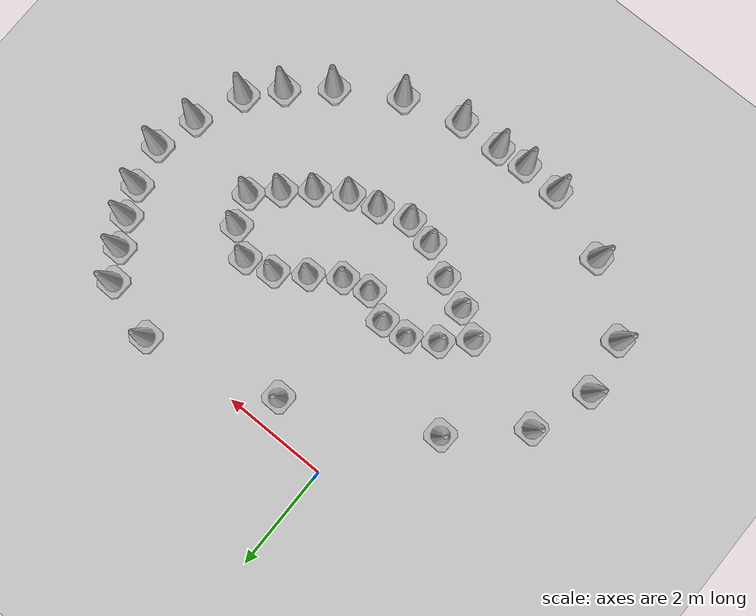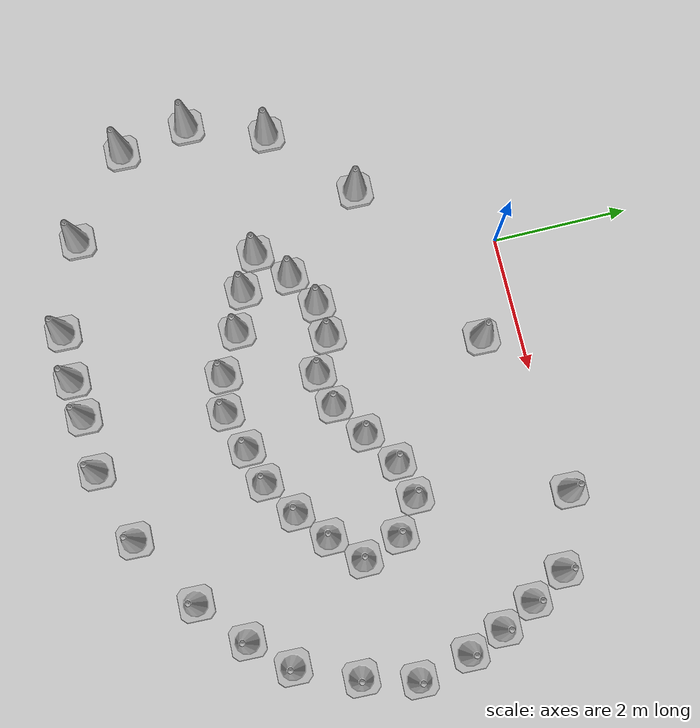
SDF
<sdf version="1.7">
 <world name="default">
  <light name="sun" type="directional">
   <pose>0 0 10 0 -0 0</pose>
   <diffuse>0.8 0.8 0.8 1</diffuse>
   <specular>0.2 0.2 0.2 1</specular>
   <attenuation>
    <range>1000</range>
    <constant>0.9</constant>
    <linear>0.01</linear>
    <quadratic>0.001</quadratic>
   </attenuation>
   <direction>-0.5 0.1 -0.9</direction>
   <spot><inner_angle>0</inner_angle><outer_angle>0</outer_angle><falloff>0</falloff></spot>
  </light>
  <model name="ground_plane">
   <static>1</static>
   <link name="link">
    <collision name="collision">
     <geometry><plane><normal>0 0 1</normal><size>100 100</size></plane></geometry>
     <surface>
      <contact><collide_bitmask>65535</collide_bitmask></contact>
      <friction><ode><mu>100</mu><mu2>50</mu2></ode></friction>
     </surface>
    </collision>
    <visual name="visual">
     <cast_shadows>0</cast_shadows>
     <geometry><plane><normal>0 0 1</normal><size>100 100</size></plane></geometry>
     <material>
      <script><uri>file://media/materials/scripts/gazebo.material</uri><name>Gazebo/Grey</name></script>
     </material>
    </visual>
   </link>
  </model>
  <gravity>0 0 -9.8</gravity>
  <magnetic_field>6e-06 2.3e-05 -4.2e-05</magnetic_field>
  <atmosphere type="adiabatic"/>
  <physics type="ode">
   <max_step_size>0.001</max_step_size>
   <real_time_factor>1</real_time_factor>
   <real_time_update_rate>1000</real_time_update_rate>
  </physics>
  <scene><ambient>0.4 0.4 0.4 1</ambient><background>0.7 0.7 0.7 1</background><shadows>1</shadows></scene>
  <spherical_coordinates>
   <surface_model>EARTH_WGS84</surface_model>
   <latitude_deg>0</latitude_deg>
   <longitude_deg>0</longitude_deg>
   <elevation>0</elevation>
   <heading_deg>0</heading_deg>
  </spherical_coordinates>
  <model name="Construction Cone">
   <link name="link">
    <collision name="collision">
     <geometry>
      <mesh><scale>10 10 10</scale><uri>model://construction_cone/meshes/construction_cone.dae</uri></mesh>
     </geometry>
    </collision>
    <visual name="visual">
     <geometry>
      <mesh><scale>10 10 10</scale><uri>model://construction_cone/meshes/construction_cone.dae</uri></mesh>
     </geometry>
    </visual>
    <inertial>
     <inertia><ixx>1</ixx><ixy>0</ixy><ixz>0</ixz><iyy>1</iyy><iyz>0</iyz><izz>1</izz></inertia>
     <mass>1</mass>
    </inertial>
   </link>
   <pose>0.821754 -2.77075 -0 0 -1e-06 0.015119</pose>
  </model>
  <model name="Construction Cone_clone">
   <link name="link">
    <collision name="collision">
     <geometry>
      <mesh><scale>10 10 10</scale><uri>model://construction_cone/meshes/construction_cone.dae</uri></mesh>
     </geometry>
    </collision>
    <visual name="visual">
     <geometry>
      <mesh><scale>10 10 10</scale><uri>model://construction_cone/meshes/construction_cone.dae</uri></mesh>
     </geometry>
    </visual>
    <inertial>
     <inertia><ixx>1</ixx><ixy>0</ixy><ixz>0</ixz><iyy>1</iyy><iyz>0</iyz><izz>1</izz></inertia>
     <mass>1</mass>
    </inertial>
   </link>
   <pose>1.84637 -2.91624 -0 0 0 -0.029286</pose>
  </model>
  <model name="Construction Cone_clone_0">
   <link name="link">
    <collision name="collision">
     <geometry>
      <mesh><scale>10 10 10</scale><uri>model://construction_cone/meshes/construction_cone.dae</uri></mesh>
     </geometry>
    </collision>
    <visual name="visual">
     <geometry>
      <mesh><scale>10 10 10</scale><uri>model://construction_cone/meshes/construction_cone.dae</uri></mesh>
     </geometry>
    </visual>
    <inertial>
     <inertia><ixx>1</ixx><ixy>0</ixy><ixz>0</ixz><iyy>1</iyy><iyz>0</iyz><izz>1</izz></inertia>
     <mass>1</mass>
    </inertial>
   </link>
   <pose>1.33214 -3.03659 -0 0 0 -0.029265</pose>
  </model>
  <model name="Construction Cone_clone_1">
   <link name="link">
    <collision name="collision">
     <geometry>
      <mesh><scale>10 10 10</scale><uri>model://construction_cone/meshes/construction_cone.dae</uri></mesh>
     </geometry>
    </collision>
    <visual name="visual">
     <geometry>
      <mesh><scale>10 10 10</scale><uri>model://construction_cone/meshes/construction_cone.dae</uri></mesh>
     </geometry>
    </visual>
    <inertial>
     <inertia><ixx>1</ixx><ixy>0</ixy><ixz>0</ixz><iyy>1</iyy><iyz>0</iyz><izz>1</izz></inertia>
     <mass>1</mass>
    </inertial>
   </link>
   <pose>2.36201 -2.57046 -0 0 -0 0</pose>
  </model>
  <model name="Construction Cone_clone_2">
   <link name="link">
    <collision name="collision">
     <geometry>
      <mesh><scale>10 10 10</scale><uri>model://construction_cone/meshes/construction_cone.dae</uri></mesh>
     </geometry>
    </collision>
    <visual name="visual">
     <geometry>
      <mesh><scale>10 10 10</scale><uri>model://construction_cone/meshes/construction_cone.dae</uri></mesh>
     </geometry>
    </visual>
    <inertial>
     <inertia><ixx>1</ixx><ixy>0</ixy><ixz>0</ixz><iyy>1</iyy><iyz>0</iyz><izz>1</izz></inertia>
     <mass>1</mass>
    </inertial>
   </link>
   <pose>2.88084 -2.21736 -0 0 -0 0</pose>
  </model>
  <model name="Construction Cone_clone_3">
   <link name="link">
    <collision name="collision">
     <geometry>
      <mesh><scale>10 10 10</scale><uri>model://construction_cone/meshes/construction_cone.dae</uri></mesh>
     </geometry>
    </collision>
    <visual name="visual">
     <geometry>
      <mesh><scale>10 10 10</scale><uri>model://construction_cone/meshes/construction_cone.dae</uri></mesh>
     </geometry>
    </visual>
    <inertial>
     <inertia><ixx>1</ixx><ixy>0</ixy><ixz>0</ixz><iyy>1</iyy><iyz>0</iyz><izz>1</izz></inertia>
     <mass>1</mass>
    </inertial>
   </link>
   <pose>3.42713 -2.08579 -5e-06 -4e-06 1e-06 -0.001164</pose>
  </model>
  <model name="Construction Cone_clone_4">
   <link name="link">
    <collision name="collision">
     <geometry>
      <mesh><scale>10 10 10</scale><uri>model://construction_cone/meshes/construction_cone.dae</uri></mesh>
     </geometry>
    </collision>
    <visual name="visual">
     <geometry>
      <mesh><scale>10 10 10</scale><uri>model://construction_cone/meshes/construction_cone.dae</uri></mesh>
     </geometry>
    </visual>
    <inertial>
     <inertia><ixx>1</ixx><ixy>0</ixy><ixz>0</ixz><iyy>1</iyy><iyz>0</iyz><izz>1</izz></inertia>
     <mass>1</mass>
    </inertial>
   </link>
   <pose>3.9204 -2.43605 -0 0 0 -0.001432</pose>
  </model>
  <model name="Construction Cone_clone_5">
   <link name="link">
    <collision name="collision">
     <geometry>
      <mesh><scale>10 10 10</scale><uri>model://construction_cone/meshes/construction_cone.dae</uri></mesh>
     </geometry>
    </collision>
    <visual name="visual">
     <geometry>
      <mesh><scale>10 10 10</scale><uri>model://construction_cone/meshes/construction_cone.dae</uri></mesh>
     </geometry>
    </visual>
    <inertial>
     <inertia><ixx>1</ixx><ixy>0</ixy><ixz>0</ixz><iyy>1</iyy><iyz>0</iyz><izz>1</izz></inertia>
     <mass>1</mass>
    </inertial>
   </link>
   <pose>4.13597 -3.02036 -0 0 -0 0.000525</pose>
  </model>
  <model name="Construction Cone_clone_6">
   <link name="link">
    <collision name="collision">
     <geometry>
      <mesh><scale>10 10 10</scale><uri>model://construction_cone/meshes/construction_cone.dae</uri></mesh>
     </geometry>
    </collision>
    <visual name="visual">
     <geometry>
      <mesh><scale>10 10 10</scale><uri>model://construction_cone/meshes/construction_cone.dae</uri></mesh>
     </geometry>
    </visual>
    <inertial>
     <inertia><ixx>1</ixx><ixy>0</ixy><ixz>0</ixz><iyy>1</iyy><iyz>0</iyz><izz>1</izz></inertia>
     <mass>1</mass>
    </inertial>
   </link>
   <pose>3.71044 -3.43818 -0 0 -0 0.001297</pose>
  </model>
  <model name="Construction Cone_clone_7">
   <link name="link">
    <collision name="collision">
     <geometry>
      <mesh><scale>10 10 10</scale><uri>model://construction_cone/meshes/construction_cone.dae</uri></mesh>
     </geometry>
    </collision>
    <visual name="visual">
     <geometry>
      <mesh><scale>10 10 10</scale><uri>model://construction_cone/meshes/construction_cone.dae</uri></mesh>
     </geometry>
    </visual>
    <inertial>
     <inertia><ixx>1</ixx><ixy>0</ixy><ixz>0</ixz><iyy>1</iyy><iyz>0</iyz><izz>1</izz></inertia>
     <mass>1</mass>
    </inertial>
   </link>
   <pose>3.25235 -3.82347 -1e-05 0 1e-06 0.000857</pose>
  </model>
  <model name="Construction Cone_clone_8">
   <link name="link">
    <collision name="collision">
     <geometry>
      <mesh><scale>10 10 10</scale><uri>model://construction_cone/meshes/construction_cone.dae</uri></mesh>
     </geometry>
    </collision>
    <visual name="visual">
     <geometry>
      <mesh><scale>10 10 10</scale><uri>model://construction_cone/meshes/construction_cone.dae</uri></mesh>
     </geometry>
    </visual>
    <inertial>
     <inertia><ixx>1</ixx><ixy>0</ixy><ixz>0</ixz><iyy>1</iyy><iyz>0</iyz><izz>1</izz></inertia>
     <mass>1</mass>
    </inertial>
   </link>
   <pose>2.72412 -4.16001 0 -0 -0 -0</pose>
  </model>
  <model name="Construction Cone_clone_9">
   <link name="link">
    <collision name="collision">
     <geometry>
      <mesh><scale>10 10 10</scale><uri>model://construction_cone/meshes/construction_cone.dae</uri></mesh>
     </geometry>
    </collision>
    <visual name="visual">
     <geometry>
      <mesh><scale>10 10 10</scale><uri>model://construction_cone/meshes/construction_cone.dae</uri></mesh>
     </geometry>
    </visual>
    <inertial>
     <inertia><ixx>1</ixx><ixy>0</ixy><ixz>0</ixz><iyy>1</iyy><iyz>0</iyz><izz>1</izz></inertia>
     <mass>1</mass>
    </inertial>
   </link>
   <pose>2.18133 -4.30389 -1e-06 2e-06 2e-06 0</pose>
  </model>
  <model name="Construction Cone_clone_10">
   <link name="link">
    <collision name="collision">
     <geometry>
      <mesh><scale>10 10 10</scale><uri>model://construction_cone/meshes/construction_cone.dae</uri></mesh>
     </geometry>
    </collision>
    <visual name="visual">
     <geometry>
      <mesh><scale>10 10 10</scale><uri>model://construction_cone/meshes/construction_cone.dae</uri></mesh>
     </geometry>
    </visual>
    <inertial>
     <inertia><ixx>1</ixx><ixy>0</ixy><ixz>0</ixz><iyy>1</iyy><iyz>0</iyz><izz>1</izz></inertia>
     <mass>1</mass>
    </inertial>
   </link>
   <pose>1.58628 -4.48463 -0 0 -1e-06 0</pose>
  </model>
  <model name="Construction Cone_clone_11">
   <link name="link">
    <collision name="collision">
     <geometry>
      <mesh><scale>10 10 10</scale><uri>model://construction_cone/meshes/construction_cone.dae</uri></mesh>
     </geometry>
    </collision>
    <visual name="visual">
     <geometry>
      <mesh><scale>10 10 10</scale><uri>model://construction_cone/meshes/construction_cone.dae</uri></mesh>
     </geometry>
    </visual>
    <inertial>
     <inertia><ixx>1</ixx><ixy>0</ixy><ixz>0</ixz><iyy>1</iyy><iyz>0</iyz><izz>1</izz></inertia>
     <mass>1</mass>
    </inertial>
   </link>
   <pose>1.04633 -4.39078 -1e-05 -1e-06 0 0</pose>
  </model>
  <model name="Construction Cone_clone_12">
   <link name="link">
    <collision name="collision">
     <geometry>
      <mesh><scale>10 10 10</scale><uri>model://construction_cone/meshes/construction_cone.dae</uri></mesh>
     </geometry>
    </collision>
    <visual name="visual">
     <geometry>
      <mesh><scale>10 10 10</scale><uri>model://construction_cone/meshes/construction_cone.dae</uri></mesh>
     </geometry>
    </visual>
    <inertial>
     <inertia><ixx>1</ixx><ixy>0</ixy><ixz>0</ixz><iyy>1</iyy><iyz>0</iyz><izz>1</izz></inertia>
     <mass>1</mass>
    </inertial>
   </link>
   <pose>0.451384 -4.05324 -0 0 -0 0.015119</pose>
  </model>
  <model name="Construction Cone_clone_13">
   <link name="link">
    <collision name="collision">
     <geometry>
      <mesh><scale>10 10 10</scale><uri>model://construction_cone/meshes/construction_cone.dae</uri></mesh>
     </geometry>
    </collision>
    <visual name="visual">
     <geometry>
      <mesh><scale>10 10 10</scale><uri>model://construction_cone/meshes/construction_cone.dae</uri></mesh>
     </geometry>
    </visual>
    <inertial>
     <inertia><ixx>1</ixx><ixy>0</ixy><ixz>0</ixz><iyy>1</iyy><iyz>0</iyz><izz>1</izz></inertia>
     <mass>1</mass>
    </inertial>
   </link>
   <pose>-0.125301 -3.82866 -8e-06 1e-06 0 0.015526</pose>
  </model>
  <model name="Construction Cone_clone_14">
   <link name="link">
    <collision name="collision">
     <geometry>
      <mesh><scale>10 10 10</scale><uri>model://construction_cone/meshes/construction_cone.dae</uri></mesh>
     </geometry>
    </collision>
    <visual name="visual">
     <geometry>
      <mesh><scale>10 10 10</scale><uri>model://construction_cone/meshes/construction_cone.dae</uri></mesh>
     </geometry>
    </visual>
    <inertial>
     <inertia><ixx>1</ixx><ixy>0</ixy><ixz>0</ixz><iyy>1</iyy><iyz>0</iyz><izz>1</izz></inertia>
     <mass>1</mass>
    </inertial>
   </link>
   <pose>0.317957 -2.81229 -0 -0 -1e-06 0.011952</pose>
  </model>
  <model name="Construction Cone_clone_15">
   <link name="link">
    <collision name="collision">
     <geometry>
      <mesh><scale>10 10 10</scale><uri>model://construction_cone/meshes/construction_cone.dae</uri></mesh>
     </geometry>
    </collision>
    <visual name="visual">
     <geometry>
      <mesh><scale>10 10 10</scale><uri>model://construction_cone/meshes/construction_cone.dae</uri></mesh>
     </geometry>
    </visual>
    <inertial>
     <inertia><ixx>1</ixx><ixy>0</ixy><ixz>0</ixz><iyy>1</iyy><iyz>0</iyz><izz>1</izz></inertia>
     <mass>1</mass>
    </inertial>
   </link>
   <pose>-0.18147 -3.10478 -0 0 -1e-06 0.013586</pose>
  </model>
  <model name="Construction Cone_clone_16">
   <link name="link">
    <collision name="collision">
     <geometry>
      <mesh><scale>10 10 10</scale><uri>model://construction_cone/meshes/construction_cone.dae</uri></mesh>
     </geometry>
    </collision>
    <visual name="visual">
     <geometry>
      <mesh><scale>10 10 10</scale><uri>model://construction_cone/meshes/construction_cone.dae</uri></mesh>
     </geometry>
    </visual>
    <inertial>
     <inertia><ixx>1</ixx><ixy>0</ixy><ixz>0</ixz><iyy>1</iyy><iyz>0</iyz><izz>1</izz></inertia>
     <mass>1</mass>
    </inertial>
   </link>
   <pose>-0.633025 -3.52557 -0 0 -0 0.015676</pose>
  </model>
  <model name="Construction Cone_clone_clone">
   <link name="link">
    <collision name="collision">
     <geometry>
      <mesh><scale>10 10 10</scale><uri>model://construction_cone/meshes/construction_cone.dae</uri></mesh>
     </geometry>
    </collision>
    <visual name="visual">
     <geometry>
      <mesh><scale>10 10 10</scale><uri>model://construction_cone/meshes/construction_cone.dae</uri></mesh>
     </geometry>
    </visual>
    <inertial>
     <inertia><ixx>1</ixx><ixy>0</ixy><ixz>0</ixz><iyy>1</iyy><iyz>0</iyz><izz>1</izz></inertia>
     <mass>1</mass>
    </inertial>
   </link>
   <pose>1.17018 -6.51793 -1e-06 2e-06 2e-06 -0.029286</pose>
  </model>
  <model name="Construction Cone_clone_clone_0">
   <link name="link">
    <collision name="collision">
     <geometry>
      <mesh><scale>10 10 10</scale><uri>model://construction_cone/meshes/construction_cone.dae</uri></mesh>
     </geometry>
    </collision>
    <visual name="visual">
     <geometry>
      <mesh><scale>10 10 10</scale><uri>model://construction_cone/meshes/construction_cone.dae</uri></mesh>
     </geometry>
    </visual>
    <inertial>
     <inertia><ixx>1</ixx><ixy>0</ixy><ixz>0</ixz><iyy>1</iyy><iyz>0</iyz><izz>1</izz></inertia>
     <mass>1</mass>
    </inertial>
   </link>
   <pose>0.602024 -6.57194 -1e-05 -1e-06 -0 -0.029286</pose>
  </model>
  <model name="Construction Cone_clone_clone_1">
   <link name="link">
    <collision name="collision">
     <geometry>
      <mesh><scale>10 10 10</scale><uri>model://construction_cone/meshes/construction_cone.dae</uri></mesh>
     </geometry>
    </collision>
    <visual name="visual">
     <geometry>
      <mesh><scale>10 10 10</scale><uri>model://construction_cone/meshes/construction_cone.dae</uri></mesh>
     </geometry>
    </visual>
    <inertial>
     <inertia><ixx>1</ixx><ixy>0</ixy><ixz>0</ixz><iyy>1</iyy><iyz>0</iyz><izz>1</izz></inertia>
     <mass>1</mass>
    </inertial>
   </link>
   <pose>-0.123793 -6.55343 -0 0 -1e-06 -0.029286</pose>
  </model>
  <model name="Construction Cone_clone_clone_2">
   <link name="link">
    <collision name="collision">
     <geometry>
      <mesh><scale>10 10 10</scale><uri>model://construction_cone/meshes/construction_cone.dae</uri></mesh>
     </geometry>
    </collision>
    <visual name="visual">
     <geometry>
      <mesh><scale>10 10 10</scale><uri>model://construction_cone/meshes/construction_cone.dae</uri></mesh>
     </geometry>
    </visual>
    <inertial>
     <inertia><ixx>1</ixx><ixy>0</ixy><ixz>0</ixz><iyy>1</iyy><iyz>0</iyz><izz>1</izz></inertia>
     <mass>1</mass>
    </inertial>
   </link>
   <pose>-1.43554 -6.05736 -0 0 -1e-06 -0.029286</pose>
  </model>
  <model name="Construction Cone_clone_clone_3">
   <link name="link">
    <collision name="collision">
     <geometry>
      <mesh><scale>10 10 10</scale><uri>model://construction_cone/meshes/construction_cone.dae</uri></mesh>
     </geometry>
    </collision>
    <visual name="visual">
     <geometry>
      <mesh><scale>10 10 10</scale><uri>model://construction_cone/meshes/construction_cone.dae</uri></mesh>
     </geometry>
    </visual>
    <inertial>
     <inertia><ixx>1</ixx><ixy>0</ixy><ixz>0</ixz><iyy>1</iyy><iyz>0</iyz><izz>1</izz></inertia>
     <mass>1</mass>
    </inertial>
   </link>
   <pose>-2.62824 -5.12984 -1e-05 -1e-06 -0 -0.029286</pose>
  </model>
  <model name="Construction Cone_clone_clone_4">
   <link name="link">
    <collision name="collision">
     <geometry>
      <mesh><scale>10 10 10</scale><uri>model://construction_cone/meshes/construction_cone.dae</uri></mesh>
     </geometry>
    </collision>
    <visual name="visual">
     <geometry>
      <mesh><scale>10 10 10</scale><uri>model://construction_cone/meshes/construction_cone.dae</uri></mesh>
     </geometry>
    </visual>
    <inertial>
     <inertia><ixx>1</ixx><ixy>0</ixy><ixz>0</ixz><iyy>1</iyy><iyz>0</iyz><izz>1</izz></inertia>
     <mass>1</mass>
    </inertial>
   </link>
   <pose>-2.79927 -4.09733 -8e-06 1e-06 -0 -0.029286</pose>
  </model>
  <model name="Construction Cone_clone_clone_5">
   <link name="link">
    <collision name="collision">
     <geometry>
      <mesh><scale>10 10 10</scale><uri>model://construction_cone/meshes/construction_cone.dae</uri></mesh>
     </geometry>
    </collision>
    <visual name="visual">
     <geometry>
      <mesh><scale>10 10 10</scale><uri>model://construction_cone/meshes/construction_cone.dae</uri></mesh>
     </geometry>
    </visual>
    <inertial>
     <inertia><ixx>1</ixx><ixy>0</ixy><ixz>0</ixz><iyy>1</iyy><iyz>0</iyz><izz>1</izz></inertia>
     <mass>1</mass>
    </inertial>
   </link>
   <pose>-2.40057 -2.94544 -1e-05 -0 -0 -0.029286</pose>
  </model>
  <model name="Construction Cone_clone_clone_6">
   <link name="link">
    <collision name="collision">
     <geometry>
      <mesh><scale>10 10 10</scale><uri>model://construction_cone/meshes/construction_cone.dae</uri></mesh>
     </geometry>
    </collision>
    <visual name="visual">
     <geometry>
      <mesh><scale>10 10 10</scale><uri>model://construction_cone/meshes/construction_cone.dae</uri></mesh>
     </geometry>
    </visual>
    <inertial>
     <inertia><ixx>1</ixx><ixy>0</ixy><ixz>0</ixz><iyy>1</iyy><iyz>0</iyz><izz>1</izz></inertia>
     <mass>1</mass>
    </inertial>
   </link>
   <pose>-1.23571 -1.85108 -0 1e-06 -0 -0.029286</pose>
  </model>
  <model name="Construction Cone_clone_clone_7">
   <link name="link">
    <collision name="collision">
     <geometry>
      <mesh><scale>10 10 10</scale><uri>model://construction_cone/meshes/construction_cone.dae</uri></mesh>
     </geometry>
    </collision>
    <visual name="visual">
     <geometry>
      <mesh><scale>10 10 10</scale><uri>model://construction_cone/meshes/construction_cone.dae</uri></mesh>
     </geometry>
    </visual>
    <inertial>
     <inertia><ixx>1</ixx><ixy>0</ixy><ixz>0</ixz><iyy>1</iyy><iyz>0</iyz><izz>1</izz></inertia>
     <mass>1</mass>
    </inertial>
   </link>
   <pose>1.37745 -0.563647 -0 0 -1e-06 -0.029286</pose>
  </model>
  <model name="Construction Cone_clone_clone_8">
   <link name="link">
    <collision name="collision">
     <geometry>
      <mesh><scale>10 10 10</scale><uri>model://construction_cone/meshes/construction_cone.dae</uri></mesh>
     </geometry>
    </collision>
    <visual name="visual">
     <geometry>
      <mesh><scale>10 10 10</scale><uri>model://construction_cone/meshes/construction_cone.dae</uri></mesh>
     </geometry>
    </visual>
    <inertial>
     <inertia><ixx>1</ixx><ixy>0</ixy><ixz>0</ixz><iyy>1</iyy><iyz>0</iyz><izz>1</izz></inertia>
     <mass>1</mass>
    </inertial>
   </link>
   <pose>3.87073 0.107918 -0 0 0 -0.029286</pose>
  </model>
  <model name="Construction Cone_clone_clone_9">
   <link name="link">
    <collision name="collision">
     <geometry>
      <mesh><scale>10 10 10</scale><uri>model://construction_cone/meshes/construction_cone.dae</uri></mesh>
     </geometry>
    </collision>
    <visual name="visual">
     <geometry>
      <mesh><scale>10 10 10</scale><uri>model://construction_cone/meshes/construction_cone.dae</uri></mesh>
     </geometry>
    </visual>
    <inertial>
     <inertia><ixx>1</ixx><ixy>0</ixy><ixz>0</ixz><iyy>1</iyy><iyz>0</iyz><izz>1</izz></inertia>
     <mass>1</mass>
    </inertial>
   </link>
   <pose>4.95834 -0.270082 -1e-05 -1e-06 -0 -0.029286</pose>
  </model>
  <model name="Construction Cone_clone_clone_10">
   <link name="link">
    <collision name="collision">
     <geometry>
      <mesh><scale>10 10 10</scale><uri>model://construction_cone/meshes/construction_cone.dae</uri></mesh>
     </geometry>
    </collision>
    <visual name="visual">
     <geometry>
      <mesh><scale>10 10 10</scale><uri>model://construction_cone/meshes/construction_cone.dae</uri></mesh>
     </geometry>
    </visual>
    <inertial>
     <inertia><ixx>1</ixx><ixy>0</ixy><ixz>0</ixz><iyy>1</iyy><iyz>0</iyz><izz>1</izz></inertia>
     <mass>1</mass>
    </inertial>
   </link>
   <pose>5.27884 -0.808741 -0 -0 -0 -0.016205</pose>
  </model>
  <model name="Construction Cone_clone_clone_11">
   <link name="link">
    <collision name="collision">
     <geometry>
      <mesh><scale>10 10 10</scale><uri>model://construction_cone/meshes/construction_cone.dae</uri></mesh>
     </geometry>
    </collision>
    <visual name="visual">
     <geometry>
      <mesh><scale>10 10 10</scale><uri>model://construction_cone/meshes/construction_cone.dae</uri></mesh>
     </geometry>
    </visual>
    <inertial>
     <inertia><ixx>1</ixx><ixy>0</ixy><ixz>0</ixz><iyy>1</iyy><iyz>0</iyz><izz>1</izz></inertia>
     <mass>1</mass>
    </inertial>
   </link>
   <pose>5.55996 -1.32206 -1e-05 -1e-06 -0 -0.043898</pose>
  </model>
  <model name="Construction Cone_clone_clone_12">
   <link name="link">
    <collision name="collision">
     <geometry>
      <mesh><scale>10 10 10</scale><uri>model://construction_cone/meshes/construction_cone.dae</uri></mesh>
     </geometry>
    </collision>
    <visual name="visual">
     <geometry>
      <mesh><scale>10 10 10</scale><uri>model://construction_cone/meshes/construction_cone.dae</uri></mesh>
     </geometry>
    </visual>
    <inertial>
     <inertia><ixx>1</ixx><ixy>0</ixy><ixz>0</ixz><iyy>1</iyy><iyz>0</iyz><izz>1</izz></inertia>
     <mass>1</mass>
    </inertial>
   </link>
   <pose>5.78347 -1.86538 -0 1e-06 -0 -0.029286</pose>
  </model>
  <model name="Construction Cone_clone_clone_13">
   <link name="link">
    <collision name="collision">
     <geometry>
      <mesh><scale>10 10 10</scale><uri>model://construction_cone/meshes/construction_cone.dae</uri></mesh>
     </geometry>
    </collision>
    <visual name="visual">
     <geometry>
      <mesh><scale>10 10 10</scale><uri>model://construction_cone/meshes/construction_cone.dae</uri></mesh>
     </geometry>
    </visual>
    <inertial>
     <inertia><ixx>1</ixx><ixy>0</ixy><ixz>0</ixz><iyy>1</iyy><iyz>0</iyz><izz>1</izz></inertia>
     <mass>1</mass>
    </inertial>
   </link>
   <pose>5.9741 -2.65732 -0 0 0 -0.029286</pose>
  </model>
  <model name="Construction Cone_clone_clone_14">
   <link name="link">
    <collision name="collision">
     <geometry>
      <mesh><scale>10 10 10</scale><uri>model://construction_cone/meshes/construction_cone.dae</uri></mesh>
     </geometry>
    </collision>
    <visual name="visual">
     <geometry>
      <mesh><scale>10 10 10</scale><uri>model://construction_cone/meshes/construction_cone.dae</uri></mesh>
     </geometry>
    </visual>
    <inertial>
     <inertia><ixx>1</ixx><ixy>0</ixy><ixz>0</ixz><iyy>1</iyy><iyz>0</iyz><izz>1</izz></inertia>
     <mass>1</mass>
    </inertial>
   </link>
   <pose>5.75793 -3.45502 -0 0 0 -0.029286</pose>
  </model>
  <model name="Construction Cone_clone_clone_15">
   <link name="link">
    <collision name="collision">
     <geometry>
      <mesh><scale>10 10 10</scale><uri>model://construction_cone/meshes/construction_cone.dae</uri></mesh>
     </geometry>
    </collision>
    <visual name="visual">
     <geometry>
      <mesh><scale>10 10 10</scale><uri>model://construction_cone/meshes/construction_cone.dae</uri></mesh>
     </geometry>
    </visual>
    <inertial>
     <inertia><ixx>1</ixx><ixy>0</ixy><ixz>0</ixz><iyy>1</iyy><iyz>0</iyz><izz>1</izz></inertia>
     <mass>1</mass>
    </inertial>
   </link>
   <pose>5.38352 -4.35892 0 -0 -0 -0.029286</pose>
  </model>
  <model name="Construction Cone_clone_clone_16">
   <link name="link">
    <collision name="collision">
     <geometry>
      <mesh><scale>10 10 10</scale><uri>model://construction_cone/meshes/construction_cone.dae</uri></mesh>
     </geometry>
    </collision>
    <visual name="visual">
     <geometry>
      <mesh><scale>10 10 10</scale><uri>model://construction_cone/meshes/construction_cone.dae</uri></mesh>
     </geometry>
    </visual>
    <inertial>
     <inertia><ixx>1</ixx><ixy>0</ixy><ixz>0</ixz><iyy>1</iyy><iyz>0</iyz><izz>1</izz></inertia>
     <mass>1</mass>
    </inertial>
   </link>
   <pose>4.87726 -4.90836 -0 0 0 -0.029286</pose>
  </model>
  <model name="Construction Cone_clone_clone_17">
   <link name="link">
    <collision name="collision">
     <geometry>
      <mesh><scale>10 10 10</scale><uri>model://construction_cone/meshes/construction_cone.dae</uri></mesh>
     </geometry>
    </collision>
    <visual name="visual">
     <geometry>
      <mesh><scale>10 10 10</scale><uri>model://construction_cone/meshes/construction_cone.dae</uri></mesh>
     </geometry>
    </visual>
    <inertial>
     <inertia><ixx>1</ixx><ixy>0</ixy><ixz>0</ixz><iyy>1</iyy><iyz>0</iyz><izz>1</izz></inertia>
     <mass>1</mass>
    </inertial>
   </link>
   <pose>4.18622 -5.5071 0 -0 -0 -0.029286</pose>
  </model>
  <model name="Construction Cone_clone_clone_18">
   <link name="link">
    <collision name="collision">
     <geometry>
      <mesh><scale>10 10 10</scale><uri>model://construction_cone/meshes/construction_cone.dae</uri></mesh>
     </geometry>
    </collision>
    <visual name="visual">
     <geometry>
      <mesh><scale>10 10 10</scale><uri>model://construction_cone/meshes/construction_cone.dae</uri></mesh>
     </geometry>
    </visual>
    <inertial>
     <inertia><ixx>1</ixx><ixy>0</ixy><ixz>0</ixz><iyy>1</iyy><iyz>0</iyz><izz>1</izz></inertia>
     <mass>1</mass>
    </inertial>
   </link>
   <pose>3.10002 -6.17158 -0 0 -0 -0.029286</pose>
  </model>
  <model name="Construction Cone_clone_clone_19">
   <link name="link">
    <collision name="collision">
     <geometry>
      <mesh><scale>10 10 10</scale><uri>model://construction_cone/meshes/construction_cone.dae</uri></mesh>
     </geometry>
    </collision>
    <visual name="visual">
     <geometry>
      <mesh><scale>10 10 10</scale><uri>model://construction_cone/meshes/construction_cone.dae</uri></mesh>
     </geometry>
    </visual>
    <inertial>
     <inertia><ixx>1</ixx><ixy>0</ixy><ixz>0</ixz><iyy>1</iyy><iyz>0</iyz><izz>1</izz></inertia>
     <mass>1</mass>
    </inertial>
   </link>
   <pose>2.00046 -6.49852 -0 0 0 -0.029286</pose>
  </model>
 </world>
</sdf>
